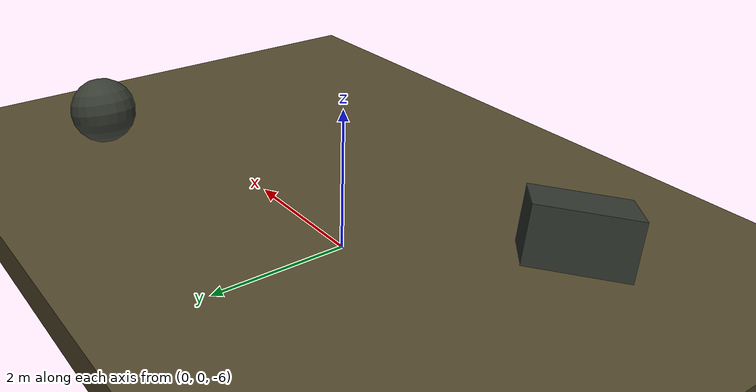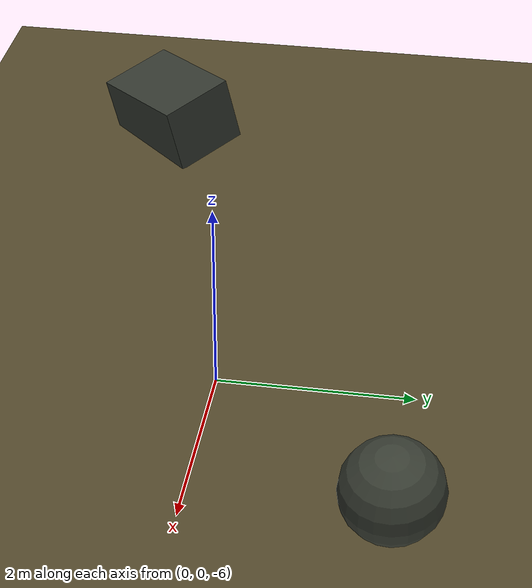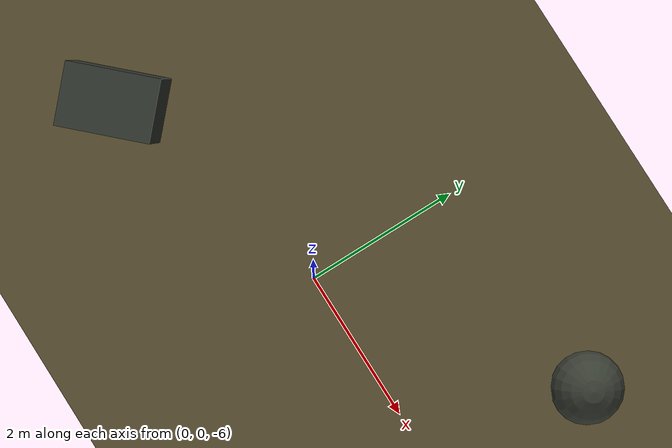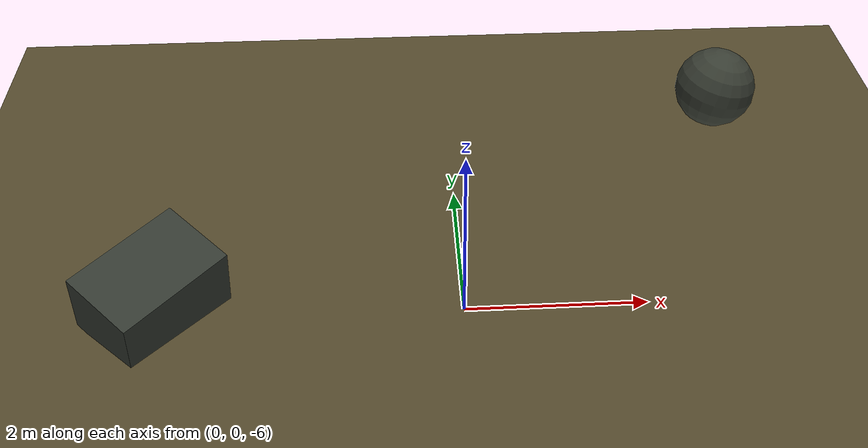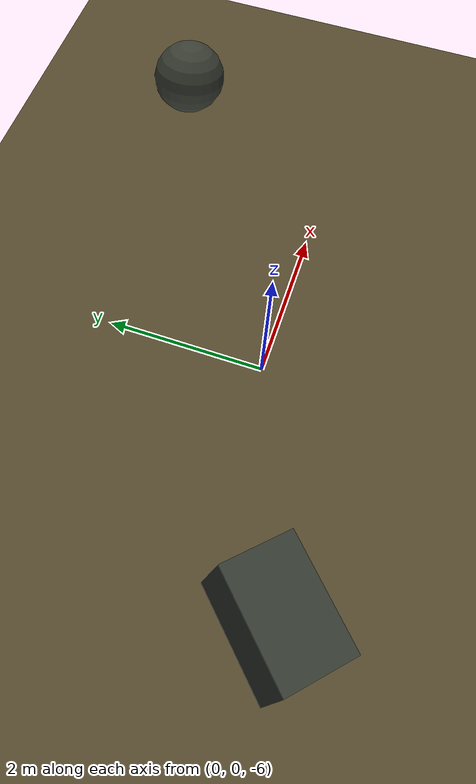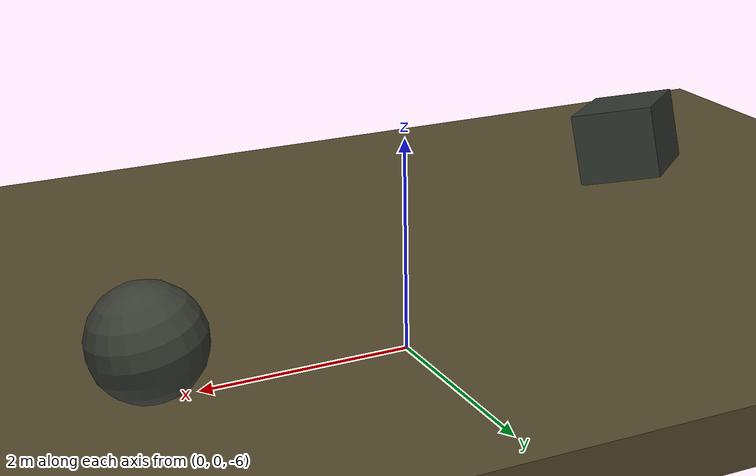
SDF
<?xml version="1.0"?>

<sdf version="1.6">

  <world name="ocean_world">

    <!-- Physics -->

    <physics name="underwater_physics" type="ode">

      <max_step_size>0.001</max_step_size>
      <real_time_update_rate>1000</real_time_update_rate>

      <ode>
        <solver>
          <type>quick</type>
          <iters>50</iters>
          <sor>1.3</sor>
        </solver>

        <constraints>
          <cfm>0.0</cfm>
          <erp>0.2</erp>
          <contact_max_correcting_vel>
            100
          </contact_max_correcting_vel>
          <contact_surface_layer>
            0.001
          </contact_surface_layer>
        </constraints>
      </ode>

    </physics>

    <gravity>0 0 -9.81</gravity>

    <!-- Underwater scene -->

    <scene>

      <!-- Dim blue-green underwater ambient light -->
      <ambient>0.04 0.12 0.16 1</ambient>

      <background>0.02 0.10 0.14 1</background>

      <shadows>true</shadows>

      <!-- Limited underwater visibility -->
      <fog>
        <type>linear</type>
        <color>0.04 0.20 0.25 1</color>
        <start>2.0</start>
        <end>18.0</end>
        <density>0.05</density>
      </fog>

    </scene>

    <!-- Light entering from the surface -->

    <light name="underwater_sun" type="directional">

      <cast_shadows>true</cast_shadows>

      <pose>0 0 10 0 0 0</pose>

      <diffuse>0.45 0.60 0.62 1</diffuse>
      <specular>0.08 0.12 0.12 1</specular>

      <direction>0.2 0.1 -1.0</direction>

    </light>

    <!-- Soft secondary light -->
    <light name="underwater_fill_light" type="point">

      <cast_shadows>false</cast_shadows>

      <pose>0 0 1 0 0 0</pose>

      <diffuse>0.08 0.18 0.22 1</diffuse>
      <specular>0.02 0.04 0.05 1</specular>

      <attenuation>
        <range>15</range>
        <constant>0.4</constant>
        <linear>0.08</linear>
        <quadratic>0.02</quadratic>
      </attenuation>

    </light>

    <!-- Seabed -->

    <model name="seabed">

      <static>true</static>

      <pose>0 0 -5.25 0 0 0</pose>

      <link name="seabed_link">

        <collision name="seabed_collision">

          <geometry>
            <box>
              <size>30 30 0.5</size>
            </box>
          </geometry>

          <surface>
            <friction>
              <ode>
                <mu>0.8</mu>
                <mu2>0.8</mu2>
              </ode>
            </friction>
          </surface>

        </collision>

        <visual name="seabed_visual">

          <geometry>
            <box>
              <size>30 30 0.5</size>
            </box>
          </geometry>

          <material>
            <ambient>0.18 0.16 0.10 1</ambient>
            <diffuse>0.32 0.28 0.17 1</diffuse>
            <specular>0.03 0.03 0.02 1</specular>
          </material>

        </visual>

      </link>

    </model>

    <!-- Visible water surface -->

    <model name="water_surface">

      <static>true</static>

      <pose>0 0 3 0 0 0</pose>

      <link name="surface_link">

        <!-- Visual only: no collision -->
        <visual name="surface_visual">

          <cast_shadows>false</cast_shadows>

          <geometry>
            <plane>
              <normal>0 0 1</normal>
              <size>30 30</size>
            </plane>
          </geometry>

          <material>
            <ambient>0.05 0.25 0.35 0.35</ambient>
            <diffuse>0.08 0.35 0.48 0.35</diffuse>
            <specular>0.4 0.5 0.5 0.35</specular>
          </material>

          <transparency>0.55</transparency>

        </visual>

      </link>

    </model>

    <!-- Example rocks -->

    <model name="rock_1">

      <static>true</static>

      <pose>3 2 -4.55 0.1 0.2 0.4</pose>

      <link name="rock_link">

        <collision name="rock_collision">
          <geometry>
            <sphere>
              <radius>0.45</radius>
            </sphere>
          </geometry>
        </collision>

        <visual name="rock_visual">
          <geometry>
            <sphere>
              <radius>0.45</radius>
            </sphere>
          </geometry>

          <material>
            <ambient>0.12 0.13 0.11 1</ambient>
            <diffuse>0.22 0.24 0.20 1</diffuse>
          </material>
        </visual>

      </link>

    </model>

    <model name="rock_2">

      <static>true</static>

      <pose>-3 -1 -4.65 0.2 -0.1 0.8</pose>

      <link name="rock_link">

        <collision name="rock_collision">
          <geometry>
            <box>
              <size>1.2 0.8 0.7</size>
            </box>
          </geometry>
        </collision>

        <visual name="rock_visual">
          <geometry>
            <box>
              <size>1.2 0.8 0.7</size>
            </box>
          </geometry>

          <material>
            <ambient>0.10 0.11 0.10 1</ambient>
            <diffuse>0.20 0.22 0.19 1</diffuse>
          </material>
        </visual>

      </link>

    </model>

    <!-- Gazebo keyboard plugin -->

    <gui fullscreen="0">

      <plugin
          name="fishbot_keyboard"
          filename="libfishbot_keyboard_gui.so"/>

    </gui>

  </world>

</sdf>
